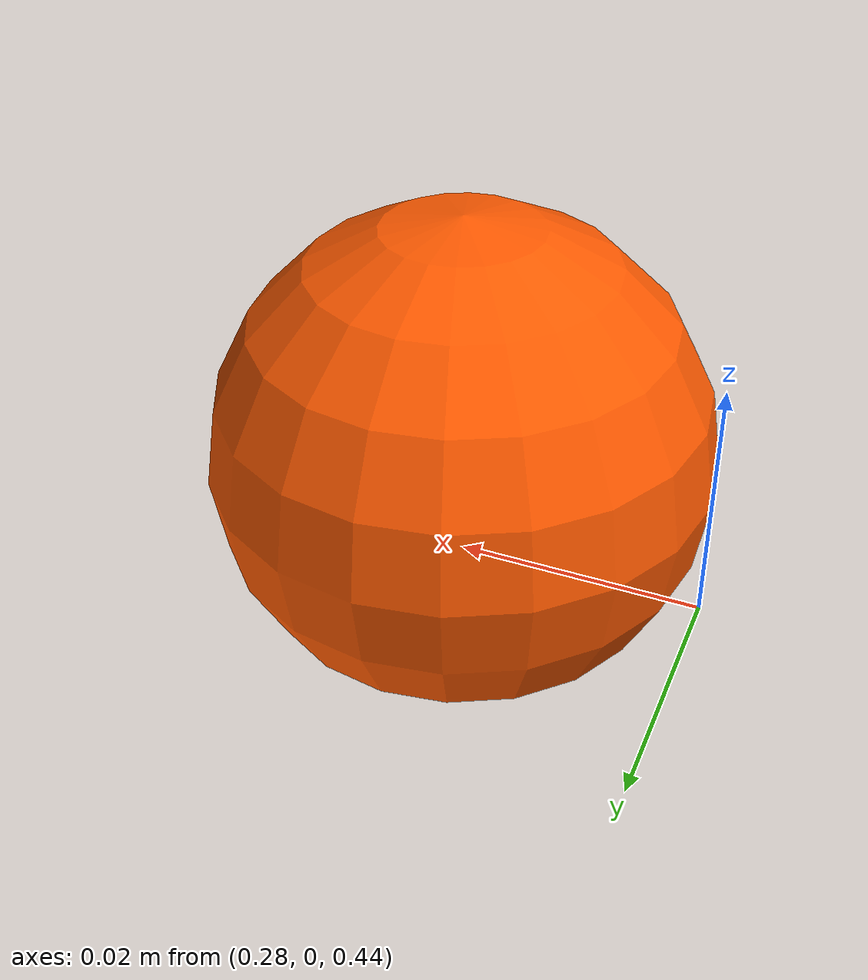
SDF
<?xml version="1.0"?>
<sdf version="1.10">
  <world name="empty_sensors">
    <gravity>0 0 0</gravity>

    <scene>
      <ambient>0.5 0.5 0.5 1</ambient>
      <background>0.7 0.7 0.7 1</background>
    </scene>

    <physics name="1ms" type="ignored">
      <max_step_size>0.001</max_step_size>
      <real_time_factor>1.0</real_time_factor>
    </physics>
    <plugin filename="gz-sim-physics-system" name="gz::sim::systems::Physics"/>
    <plugin filename="gz-sim-user-commands-system" name="gz::sim::systems::UserCommands"/>
    <plugin filename="gz-sim-scene-broadcaster-system" name="gz::sim::systems::SceneBroadcaster"/>
    <plugin filename="gz-sim-sensors-system" name="gz::sim::systems::Sensors">
      <render_engine>ogre2</render_engine>
    </plugin>

    <light type="directional" name="sun">
      <cast_shadows>true</cast_shadows>
      <pose>0 0 10 0 0 0</pose>
      <diffuse>0.6 0.6 0.6 1</diffuse>
      <specular>0.0 0.0 0.0 1</specular>
      <direction>-0.5 0.1 -0.9</direction>
    </light>

    <model name="ground_plane">
      <static>true</static>
      <link name="link">
        <collision name="collision">
          <geometry><plane><normal>0 0 1</normal><size>20 20</size></plane></geometry>
        </collision>
        <visual name="visual">
          <geometry><plane><normal>0 0 1</normal><size>20 20</size></plane></geometry>
          <material><ambient>0.4 0.4 0.4 1</ambient><diffuse>0.5 0.5 0.5 1</diffuse></material>
        </visual>
      </link>
    </model>

    <!-- orange ping-pong ball; emissive so it shows saturated orange regardless of lighting -->
    <model name="ball_orange">
      <pose>0.3 0.0 0.45 0 0 0</pose>
      <link name="link">
        <inertial><mass>0.0027</mass>
          <inertia><ixx>1e-6</ixx><iyy>1e-6</iyy><izz>1e-6</izz><ixy>0</ixy><ixz>0</ixz><iyz>0</iyz></inertia>
        </inertial>
        <collision name="collision"><geometry><sphere><radius>0.02</radius></sphere></geometry></collision>
        <visual name="visual">
          <geometry><sphere><radius>0.02</radius></sphere></geometry>
          <material>
            <ambient>1.0 0.35 0.0 1</ambient>
            <diffuse>1.0 0.35 0.0 1</diffuse>
            <specular>0.0 0.0 0.0 1</specular>
            <emissive>0.8 0.28 0.0 1</emissive>
          </material>
        </visual>
      </link>
    </model>
  </world>
</sdf>
